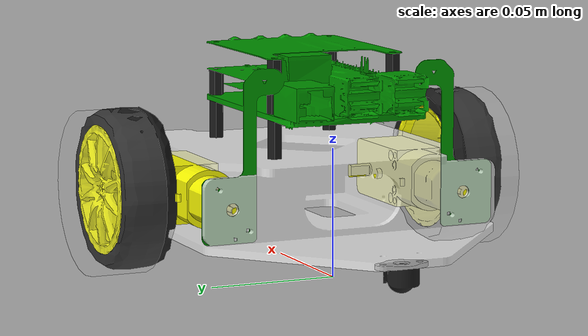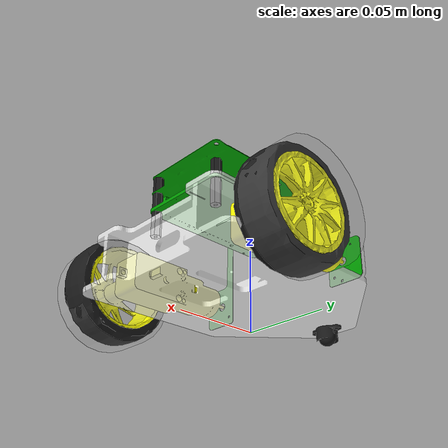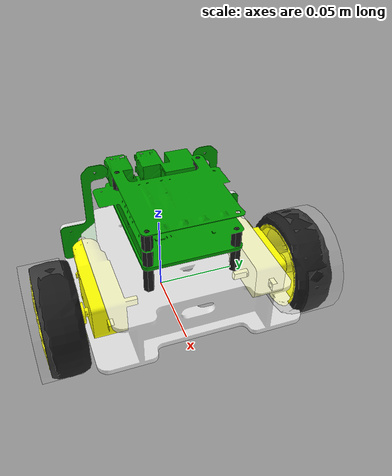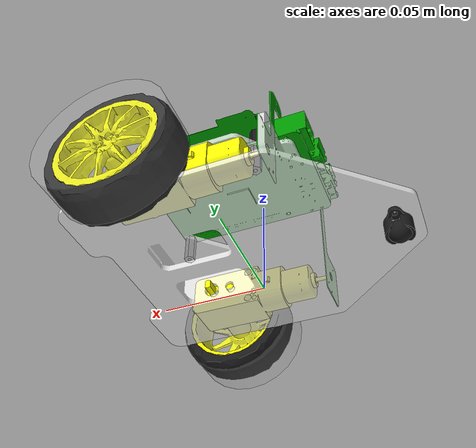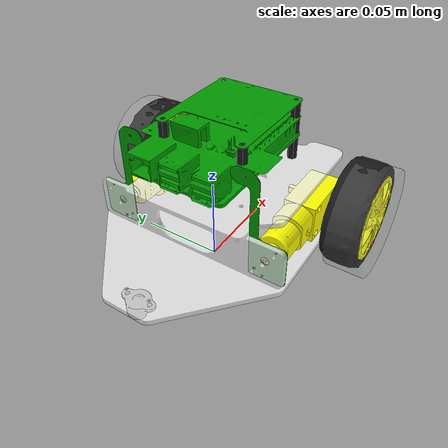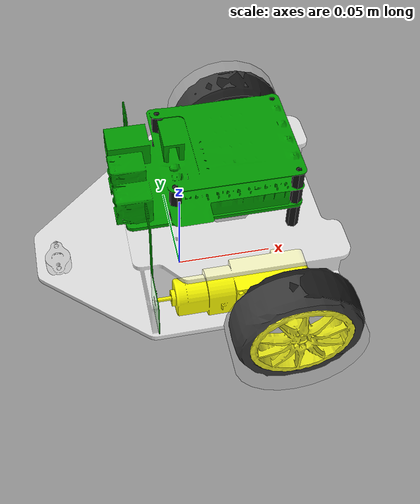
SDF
<?xml version='1.0'?>
<sdf version='1.4'>
  <model name="PenguinPi">
    <pose>0 0 0.017 0 0 0</pose>

    <link name='base_link'>
      <pose>0 0 0.015 0 0 0</pose>
      <inertial>
      <pose>0 0 -0.0 0 0 0</pose>
        <mass>1.18011</mass>
        <inertia>
          <ixx>0.0082200055</ixx>
          <ixy>0</ixy>
          <ixz>0</ixz>
          <iyy>0.008220055</iyy>
          <iyz>0</iyz>
          <izz>0.00822</izz>
        </inertia>
      </inertial>

          <collision name='collision'>
            <geometry>
              <box>
                <size>.150 .120 .03</size>
              </box>
            </geometry>

            <surface>
              <friction>
                <ode>
                  <mu>0</mu>
                  <mu2>0</mu2>
                  <slip1>1.0</slip1>
                  <slip2>1.0</slip2>
                </ode>
              </friction>
            </surface>

             <bounce>
              <restitution_coefficient>0</restitution_coefficient>
              <threshold>1e+06</threshold>
            </bounce>
          </collision>

         <collision name='caster_collision'>
            <pose>-0.069 0 -0.015 0 0 0</pose>
            <geometry>
                <sphere>
                <radius>.009</radius>
              </sphere>
            </geometry>

            <surface>
              <friction>
                <ode>
                  <mu>0</mu>
                  <mu2>0</mu2>
                  <slip1>1.0</slip1>
                  <slip2>1.0</slip2>
                </ode>
              </friction>
            </surface>

             <bounce>
              <restitution_coefficient>0</restitution_coefficient>
              <threshold>1e+06</threshold>
            </bounce>
          </collision>

    </link>

    <link name='mesh_links'>
     <pose>0.11 -0.086 -0.160 0 0 1.5708</pose>
      <inertial>
        <pose frame=''>-0.00 0 0.000673 0 -0 0</pose>
        <mass>0.01</mass>
        <inertia>
          <ixx>0</ixx>
          <ixy>0</ixy>
          <ixz>0</ixz>
          <iyy>0</iyy>
          <iyz>0</iyz>
          <izz>0</izz>
        </inertia>
      </inertial>
        <visual name='chassis_visual'>
          <material>
            <ambient>1 1 1 1</ambient>
            <diffuse>1 1 1 1</diffuse>
            <specular>0.1 0.1 0.1 128</specular>
            <emmisive>1 1 1</emmisive>
          </material>
          <geometry>
            <mesh>
              <uri>model://penguinpi_description/meshes/Chassiss.stl</uri>
            </mesh>
          </geometry>
          <transparency>0.2</transparency>
          <cast_shadows>1</cast_shadows>
        </visual>

        <visual name='standoff_visual'>
          <material>
            <ambient>0.1 0.1 0.1</ambient>
            <diffuse>0.1 0.1 0.1</diffuse>
            <specular>0.01 0.01 0.01 1.0 1.0</specular>
          </material>
          <geometry>
            <mesh>
              <uri>model://penguinpi_description/meshes/Castor.stl</uri>
            </mesh>
          </geometry>
        </visual>

        <visual name='motors_visual'>
          <material>
            <ambient>1 1 0</ambient>
            <diffuse>1 1 0</diffuse>
            <specular>0 0 0 0 0</specular>
          </material>
          <geometry>
            <mesh>
              <uri>model://penguinpi_description/meshes/Motors.stl</uri>
            </mesh>
          </geometry>
        </visual>

        <visual name='electronics_visual'>
          <material>
            <ambient>0 0.6 0</ambient>
            <diffuse>0 0.6 0</diffuse>
            <specular>0.1 0.1 0.1 1 1</specular>
          </material>
          <geometry>
            <mesh>
              <uri>model://penguinpi_description/meshes/Electronics_s.stl</uri>
            </mesh>
          </geometry>
        </visual>

      <visual name='lwheel_tire_visual'>
        <material>
          <ambient>0.1 0.1 0.1</ambient>
          <diffuse>0.1 0.1 0.1</diffuse>
          <specular>0.01 0.01 0.01 1.0 1.0</specular>
        </material>
        <geometry>
          <mesh>
            <uri>model://penguinpi_description/meshes/Tire_s.stl</uri>
          </mesh>
        </geometry>
      </visual>

      <visual name='lwheel_rim_visual'>
        <material>
          <ambient>1 1 0</ambient>
          <diffuse>1 1 0</diffuse>
          <specular>0 0 0 0 0</specular>
        </material>
        <geometry>
          <mesh>
            <uri>model://penguinpi_description/meshes/Rim_s.stl</uri>
          </mesh>
        </geometry>
      </visual>

      <visual name='rwheel_tire_visual'>
              <material>
          <ambient>0.1 0.1 0.1</ambient>
          <diffuse>0.1 0.1 0.1</diffuse>
          <specular>0.01 0.01 0.01 1.0 1.0</specular>
        </material>
        <pose>0.1710 0.136 0  0 0 3.1416</pose>
        <geometry>
          <mesh>
            <uri>model://penguinpi_description/meshes/Tire_s.stl</uri>
          </mesh>
        </geometry>
      </visual>

      <visual name='rwheel_rim_visual'>
        <material>
          <ambient>1 1 0</ambient>
          <diffuse>1 1 0</diffuse>
          <specular>0 0 0 0 0</specular>
        </material>
        <pose>0.1710 0.136 0  0 0 3.1416</pose>
        <geometry>
          <mesh>
            <uri>model://penguinpi_description/meshes/Rim_s.stl</uri>
          </mesh>
        </geometry>
      </visual>
    </link>

    <link name="left_wheel">
      <pose>0.041 0.075 0.015 0 1.5707 1.5707</pose>
      <inertial>
        <pose frame=''>0 0 0 0 -0 0</pose>
        <mass>1.3</mass>
        <inertia>
          <ixx>0.00448235</ixx>
          <ixy>0</ixy>
          <ixz>0</ixz>
          <iyy>0.00154363</iyy>
          <iyz>0</iyz>
          <izz>0.0066528</izz>
        </inertia>
      </inertial>

      <collision name="collision">
        <geometry>
          <cylinder>
            <radius>.032</radius>
            <length>.022</length>
          </cylinder>
        </geometry>
        <surface>
          <friction>
            <ode>
              <mu>50</mu>
              <mu2>200</mu2>
              <fdir1>0 0 0</fdir1>
              <slip1>0</slip1>
              <slip2>0</slip2>
            </ode>
            <torsional>
              <coefficient>1</coefficient>
              <patch_radius>0.06</patch_radius>
              <surface_radius>0</surface_radius>
              <use_patch_radius>1</use_patch_radius>
              <ode>
                <slip>0</slip>
              </ode>
            </torsional>
          </friction>
          <bounce>
            <restitution_coefficient>0</restitution_coefficient>
            <threshold>1e+06</threshold>
          </bounce>
          <contact>
            <collide_without_contact>0</collide_without_contact>
            <collide_without_contact_bitmask>1</collide_without_contact_bitmask>
            <collide_bitmask>1</collide_bitmask>
            <ode>
              <soft_cfm>0</soft_cfm>
              <soft_erp>0.2</soft_erp>
              <kp>1e+08</kp>
              <kd>1</kd>
              <max_vel>0.01</max_vel>
              <min_depth>0</min_depth>
            </ode>
            <bullet>
              <split_impulse>1</split_impulse>
              <split_impulse_penetration_threshold>-0.01</split_impulse_penetration_threshold>
              <soft_cfm>0</soft_cfm>
              <soft_erp>0.2</soft_erp>
              <kp>1e+08</kp>
              <kd>1</kd>
            </bullet>
          </contact>
        </surface>
      </collision>

      <visual name="visual">
        <geometry>
          <cylinder>
            <radius>.032</radius>
            <length>.022</length>
          </cylinder>
        </geometry>
        <transparency>0.9</transparency>
      </visual>
    </link>

    <link name="right_wheel">
      <pose>0.041 -0.075 0.015 0 1.5707 1.5707</pose>
      <inertial>
        <pose frame=''>0 0 0 0 -0 0</pose>
        <mass>1.3</mass>
        <inertia>
          <ixx>0.00448235</ixx>
          <ixy>0</ixy>
          <ixz>0</ixz>
          <iyy>0.00154363</iyy>
          <iyz>0</iyz>
          <izz>0.0066528</izz>
        </inertia>
      </inertial>

      <collision name="collision">
        <geometry>
          <cylinder>
            <radius>.032</radius>
            <length>.022</length>
          </cylinder>
        </geometry>
          <surface>
          <friction>
            <ode>
              <mu>50</mu>
              <mu2>200</mu2>
              <fdir1>0 0 0</fdir1>
              <slip1>0</slip1>
              <slip2>0</slip2>
            </ode>
            <torsional>
              <coefficient>1</coefficient>
              <patch_radius>0.06</patch_radius>
              <surface_radius>0</surface_radius>
              <use_patch_radius>1</use_patch_radius>
              <ode>
                <slip>0</slip>
              </ode>
            </torsional>
          </friction>
          <bounce>
            <restitution_coefficient>0</restitution_coefficient>
            <threshold>1e+06</threshold>
          </bounce>
          <contact>
            <collide_without_contact>0</collide_without_contact>
            <collide_without_contact_bitmask>1</collide_without_contact_bitmask>
            <collide_bitmask>1</collide_bitmask>
            <ode>
              <soft_cfm>0</soft_cfm>
              <soft_erp>0.2</soft_erp>
              <kp>1e+08</kp>
              <kd>1</kd>
              <max_vel>0.01</max_vel>
              <min_depth>0</min_depth>
            </ode>
            <bullet>
              <split_impulse>1</split_impulse>
              <split_impulse_penetration_threshold>-0.01</split_impulse_penetration_threshold>
              <soft_cfm>0</soft_cfm>
              <soft_erp>0.2</soft_erp>
              <kp>1e+08</kp>
              <kd>1</kd>
            </bullet>
          </contact>
        </surface>
      </collision>
      <visual name="visual">
        <geometry>
          <cylinder>
            <radius>.032</radius>
            <length>.022</length>
          </cylinder>
        </geometry>
        <transparency>0.9</transparency>
      </visual>
    </link>

  <link name='cam_link'>
    <pose>0.08 0.0 0.015 0 0 0</pose>
    <inertial>
	<pose>-0.06 0 -0.0 0 0 0</pose>
      <mass>0.05</mass>
      <inertia>
        <ixx>0.00003</ixx>
        <ixy>0</ixy>
        <ixz>0</ixz>
        <iyy>0.00003</iyy>
        <iyz>0</iyz>
        <izz>0.00003</izz>
      </inertia>
    </inertial>
    <self_collide>0</self_collide>
    <kinematic>0</kinematic>
    <sensor name='camera1' type='camera'>
      <camera name="head">
        <horizontal_fov>1.0855</horizontal_fov> <!-- from raspberry pi specs-->
        <vertical_fov>0.8517</vertical_fov> <!-- from raspberry pi specs-->
        <image>
          <width>640</width>
          <height>480</height>
          <format>R8G8B8</format>
        </image>
        <clip>
          <near>0.02</near>
          <far>300</far>
        </clip>
      </camera>
      <always_on>1</always_on>
      <update_rate>30</update_rate>
      <visualize>1</visualize>
      <plugin name="camera_controller" filename="libgazebo_ros_camera.so">
        <alwaysOn>true</alwaysOn>
        <updateRate>0.0</updateRate>
        <cameraName>picam/camera</cameraName>
        <imageTopicName>image_raw</imageTopicName>
        <cameraInfoTopicName>camera_info</cameraInfoTopicName>
        <frameName>camera_link</frameName>
        <hackBaseline>0.07</hackBaseline>
        <distortionK1>0.0</distortionK1>
        <distortionK2>0.0</distortionK2>
        <distortionK3>0.0</distortionK3>
        <distortionT1>0.0</distortionT1>
        <distortionT2>0.0</distortionT2>
      </plugin>
    </sensor>
  </link>

    <joint name ='cam_fix' type='fixed'>
      <parent>cam_link</parent>
      <child>base_link</child>
    </joint>

    <joint name ='fix' type='fixed'>
      <parent>mesh_links</parent>
      <child>base_link</child>
    </joint>

    <joint type="revolute" name="left_wheel_hinge">
      <pose>0 0 -0.03 0 0 0</pose>
      <child>left_wheel</child>
      <parent>base_link</parent>
      <axis>
        <xyz>0 1 0</xyz>

        <limit>
          <lower>-1e+16</lower>
          <upper>1e+16</upper>
          <effort>-1</effort>
          <velocity>-1</velocity>
        </limit>
        <dynamics>
          <spring_reference>0</spring_reference>
          <spring_stiffness>0</spring_stiffness>
          <damping>0.01</damping>
          <friction>0</friction>
        </dynamics>
      </axis>
      <physics>
        <ode>
          <limit>
            <cfm>0</cfm>
            <erp>0.2</erp>
          </limit>
          <suspension>
            <cfm>0</cfm>
            <erp>0.2</erp>
          </suspension>
        </ode>
      </physics>
    </joint>

    <joint type="revolute" name="right_wheel_hinge">
      <pose>0 0 0.03 0 0 0</pose>
      <child>right_wheel</child>
      <parent>base_link</parent>
      <axis>
        <xyz>0 1 0</xyz>

        <limit>
          <lower>-1e+16</lower>
          <upper>1e+16</upper>
          <effort>-1</effort>
          <velocity>-1</velocity>
        </limit>
        <dynamics>
          <spring_reference>0</spring_reference>
          <spring_stiffness>0</spring_stiffness>
          <damping>0.01</damping>
          <friction>0</friction>
        </dynamics>
      </axis>
      <physics>
        <ode>
          <limit>
            <cfm>0</cfm>
            <erp>0.2</erp>
          </limit>
          <suspension>
            <cfm>0</cfm>
            <erp>0.2</erp>
          </suspension>
        </ode>
      </physics>
    </joint>

    <!-- camera -->

  <plugin name="differential_drive_controller" filename="libgazebo_ros_diff_drive.so">

    <!-- Plugin update rate in Hz -->
    <updateRate>20</updateRate>

    <!-- Name of left joint, defaults to `left_joint` -->
    <leftJoint>left_wheel_hinge</leftJoint>

    <!-- Name of right joint, defaults to `right_joint` -->
    <rightJoint>right_wheel_hinge</rightJoint>

    <!-- The distance from the center of one wheel to the other, in meters, defaults to 0.34 m -->
    <wheelSeparation>0.150</wheelSeparation>

    <!-- Diameter of the wheels, in meters, defaults to 0.15 m -->
    <wheelDiameter>0.075</wheelDiameter>

    <!-- Wheel acceleration, in rad/s^2, defaults to 0.0 rad/s^2 -->
    <wheelAcceleration>1</wheelAcceleration>

    <!-- Maximum torque which the wheels can produce, in Nm, defaults to 5 Nm -->
    <wheelTorque>5</wheelTorque>

    <!-- Topic to receive geometry_msgs/Twist message commands, defaults to `cmd_vel` -->
    <commandTopic>cmd_vel</commandTopic>

    <!-- Topic to publish nav_msgs/Odometry messages, defaults to `odom` -->
    <odometryTopic>odom</odometryTopic>

    <!-- Odometry frame, defaults to `odom` -->
    <odometryFrame>odom</odometryFrame>

    <!-- Robot frame to calculate odometry from, defaults to `base_footprint` -->
    <robotBaseFrame>base_link</robotBaseFrame>

    <!-- Odometry source, 0 for ENCODER, 1 for WORLD, defaults to WORLD -->
    <odometrySource>0</odometrySource>

    <!-- Set to true to publish transforms for the wheel links, defaults to false -->
    <publishWheelTF>true</publishWheelTF>

    <!-- Set to true to publish transforms for the odometry, defaults to true -->
    <publishOdom>true</publishOdom>

    <!-- Set to true to publish sensor_msgs/JointState on /joint_states for the wheel joints, defaults to false -->
    <publishWheelJointState>true</publishWheelJointState>

    <!-- Set to true to swap right and left wheels, defaults to true -->
    <legacyMode>false</legacyMode>
  </plugin>

  </model>
</sdf>
